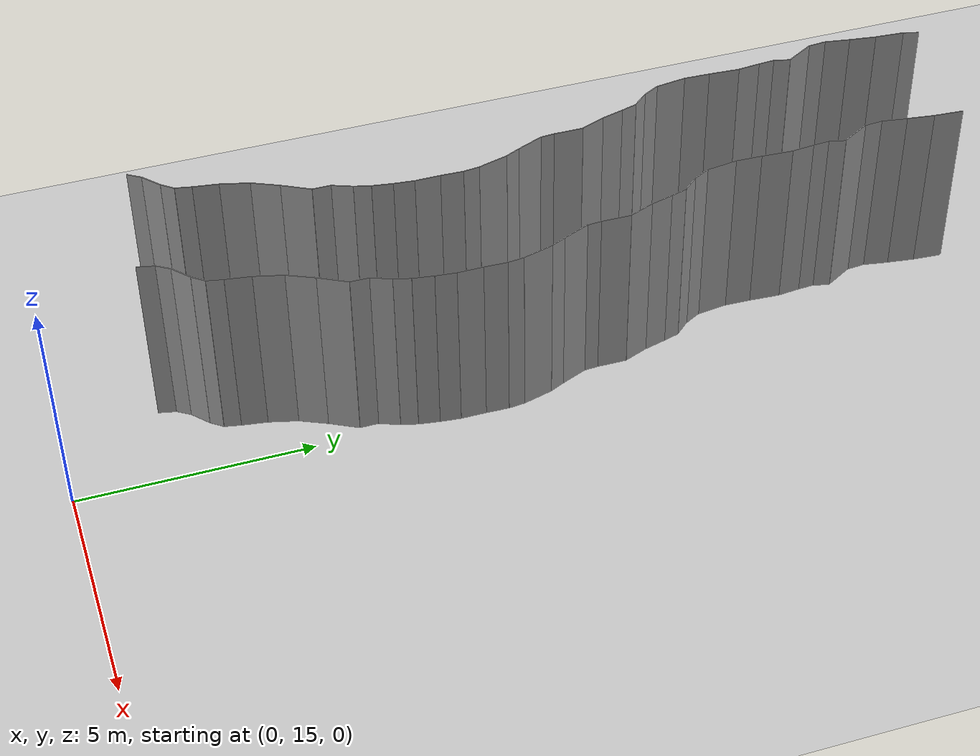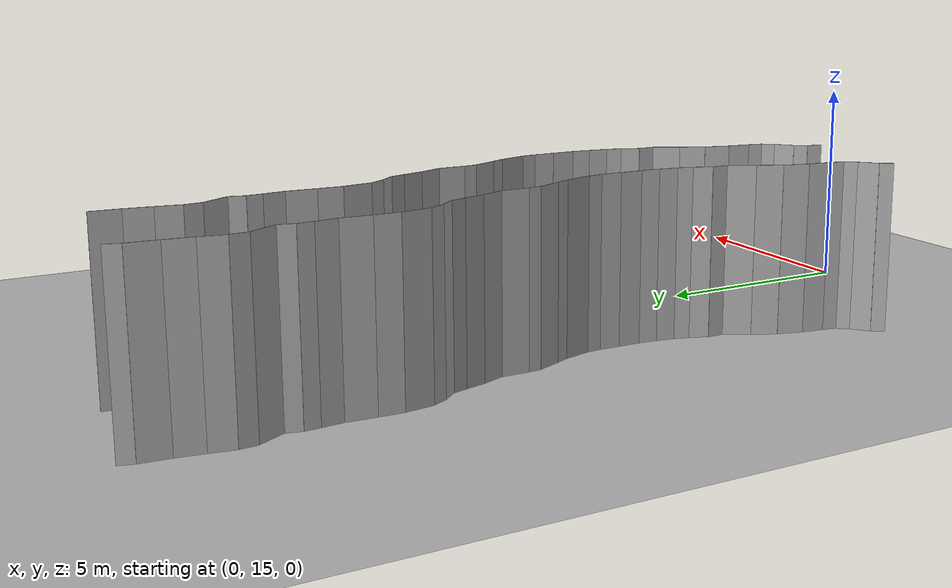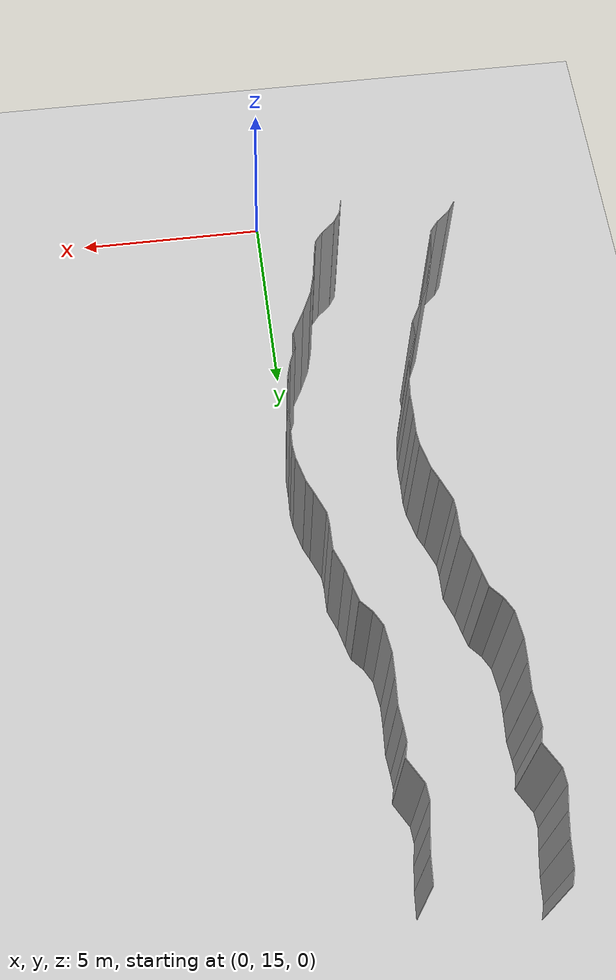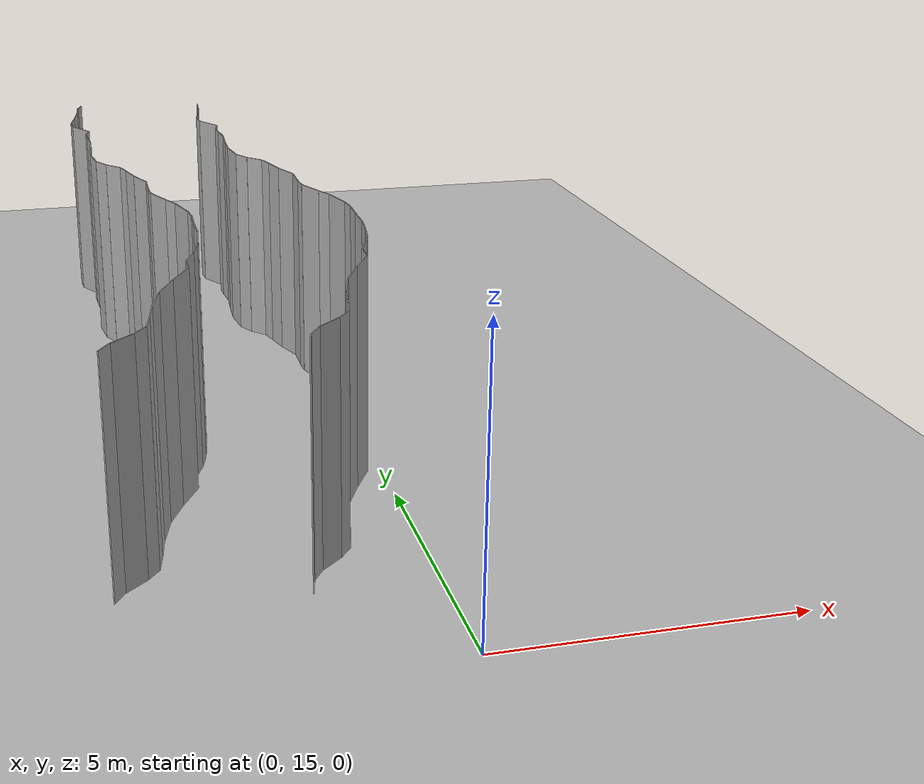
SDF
<sdf version="1.6">
 <world name="default">
  <model name="ground_plane">
   <static>1</static>
   <link name="link">
    <collision name="collision">
     <geometry><plane><normal>0 0 1</normal><size>200 200</size></plane></geometry>
     <surface><friction><ode><mu>100</mu><mu2>50</mu2></ode></friction></surface>
    </collision>
    <visual name="visual">
     <cast_shadows>0</cast_shadows>
     <geometry><plane><normal>0 0 1</normal><size>200 200</size></plane></geometry>
     <material>
      <script><uri>file://media/materials/scripts/gazebo.material</uri><name>Gazebo/Grey</name></script>
     </material>
    </visual>
   </link>
   <pose>0 100 0 0 -0 0</pose>
  </model>
  <model name="wall_73">
   <static>1</static>
   <pose>-1.9405979262429138 17.303504752749035 2 0 0 -0.21745052618434096</pose>
   <link name="link">
    <collision name="collision"><geometry><box><size>0.02 0.380133633448 4</size></box></geometry></collision>
    <visual name="visual">
     <material>
      <script><name>Gazebo/Grey</name><uri>file://media/materials/scripts/gazebo.material</uri></script>
     </material>
     <geometry><box><size>0.02 0.380133633448 4</size></box></geometry>
    </visual>
   </link>
  </model>
  <model name="wall_74">
   <static>1</static>
   <pose>-4.8090508543106 17.62739112944181 2 0 0 -0.5796712429326525</pose>
   <link name="link">
    <collision name="collision"><geometry><box><size>0.02 0.330596319204 4</size></box></geometry></collision>
    <visual name="visual">
     <material>
      <script><name>Gazebo/Grey</name><uri>file://media/materials/scripts/gazebo.material</uri></script>
     </material>
     <geometry><box><size>0.02 0.330596319204 4</size></box></geometry>
    </visual>
   </link>
  </model>
  <model name="wall_75">
   <static>1</static>
   <pose>-1.8090508543106 17.62739112944181 2 0 0 -0.5796712429326525</pose>
   <link name="link">
    <collision name="collision"><geometry><box><size>0.02 0.330596319204 4</size></box></geometry></collision>
    <visual name="visual">
     <material>
      <script><name>Gazebo/Grey</name><uri>file://media/materials/scripts/gazebo.material</uri></script>
     </material>
     <geometry><box><size>0.02 0.330596319204 4</size></box></geometry>
    </visual>
   </link>
  </model>
  <model name="wall_76">
   <static>1</static>
   <pose>-4.537655444849806 17.924619260666404 2 0 0 -0.8498227007358027</pose>
   <link name="link">
    <collision name="collision"><geometry><box><size>0.02 0.48152912436 4</size></box></geometry></collision>
    <visual name="visual">
     <material>
      <script><name>Gazebo/Grey</name><uri>file://media/materials/scripts/gazebo.material</uri></script>
     </material>
     <geometry><box><size>0.02 0.48152912436 4</size></box></geometry>
    </visual>
   </link>
  </model>
  <model name="wall_77">
   <static>1</static>
   <pose>-1.5376554448498059 17.924619260666404 2 0 0 -0.8498227007358027</pose>
   <link name="link">
    <collision name="collision"><geometry><box><size>0.02 0.48152912436 4</size></box></geometry></collision>
    <visual name="visual">
     <material>
      <script><name>Gazebo/Grey</name><uri>file://media/materials/scripts/gazebo.material</uri></script>
     </material>
     <geometry><box><size>0.02 0.48152912436 4</size></box></geometry>
    </visual>
   </link>
  </model>
  <model name="wall_78">
   <static>1</static>
   <pose>-4.259291106532988 18.207845466338775 2 0 0 -0.6652304515447082</pose>
   <link name="link">
    <collision name="collision"><geometry><box><size>0.02 0.315957304203 4</size></box></geometry></collision>
    <visual name="visual">
     <material>
      <script><name>Gazebo/Grey</name><uri>file://media/materials/scripts/gazebo.material</uri></script>
     </material>
     <geometry><box><size>0.02 0.315957304203 4</size></box></geometry>
    </visual>
   </link>
  </model>
  <model name="wall_79">
   <static>1</static>
   <pose>-1.259291106532988 18.207845466338775 2 0 0 -0.6652304515447082</pose>
   <link name="link">
    <collision name="collision"><geometry><box><size>0.02 0.315957304203 4</size></box></geometry></collision>
    <visual name="visual">
     <material>
      <script><name>Gazebo/Grey</name><uri>file://media/materials/scripts/gazebo.material</uri></script>
     </material>
     <geometry><box><size>0.02 0.315957304203 4</size></box></geometry>
    </visual>
   </link>
  </model>
  <model name="wall_80">
   <static>1</static>
   <pose>-4.125946687361028 18.506785651148704 2 0 0 -0.20236920765686695</pose>
   <link name="link">
    <collision name="collision"><geometry><box><size>0.02 0.356569667727 4</size></box></geometry></collision>
    <visual name="visual">
     <material>
      <script><name>Gazebo/Grey</name><uri>file://media/materials/scripts/gazebo.material</uri></script>
     </material>
     <geometry><box><size>0.02 0.356569667727 4</size></box></geometry>
    </visual>
   </link>
  </model>
  <model name="wall_81">
   <static>1</static>
   <pose>-1.1259466873610284 18.506785651148704 2 0 0 -0.20236920765686695</pose>
   <link name="link">
    <collision name="collision"><geometry><box><size>0.02 0.356569667727 4</size></box></geometry></collision>
    <visual name="visual">
     <material>
      <script><name>Gazebo/Grey</name><uri>file://media/materials/scripts/gazebo.material</uri></script>
     </material>
     <geometry><box><size>0.02 0.356569667727 4</size></box></geometry>
    </visual>
   </link>
  </model>
  <model name="wall_82">
   <static>1</static>
   <pose>-4.04897732088072 18.95326960595 2 0 0 -0.15018545184946558</pose>
   <link name="link">
    <collision name="collision"><geometry><box><size>0.02 0.549864341503 4</size></box></geometry></collision>
    <visual name="visual">
     <material>
      <script><name>Gazebo/Grey</name><uri>file://media/materials/scripts/gazebo.material</uri></script>
     </material>
     <geometry><box><size>0.02 0.549864341503 4</size></box></geometry>
    </visual>
   </link>
  </model>
  <model name="wall_83">
   <static>1</static>
   <pose>-1.04897732088072 18.95326960595 2 0 0 -0.15018545184946558</pose>
   <link name="link">
    <collision name="collision"><geometry><box><size>0.02 0.549864341503 4</size></box></geometry></collision>
    <visual name="visual">
     <material>
      <script><name>Gazebo/Grey</name><uri>file://media/materials/scripts/gazebo.material</uri></script>
     </material>
     <geometry><box><size>0.02 0.549864341503 4</size></box></geometry>
    </visual>
   </link>
  </model>
  <model name="wall_84">
   <static>1</static>
   <pose>-3.9269397103972743 19.532441080749784 2 0 0 -0.2573981066082973</pose>
   <link name="link">
    <collision name="collision"><geometry><box><size>0.02 0.63560796138 4</size></box></geometry></collision>
    <visual name="visual">
     <material>
      <script><name>Gazebo/Grey</name><uri>file://media/materials/scripts/gazebo.material</uri></script>
     </material>
     <geometry><box><size>0.02 0.63560796138 4</size></box></geometry>
    </visual>
   </link>
  </model>
  <model name="wall_85">
   <static>1</static>
   <pose>-0.9269397103972743 19.532441080749784 2 0 0 -0.2573981066082973</pose>
   <link name="link">
    <collision name="collision"><geometry><box><size>0.02 0.63560796138 4</size></box></geometry></collision>
    <visual name="visual">
     <material>
      <script><name>Gazebo/Grey</name><uri>file://media/materials/scripts/gazebo.material</uri></script>
     </material>
     <geometry><box><size>0.02 0.63560796138 4</size></box></geometry>
    </visual>
   </link>
  </model>
  <model name="wall_86">
   <static>1</static>
   <pose>-3.7129688123274525 20.12234572424565 2 0 0 -0.44011688636229307</pose>
   <link name="link">
    <collision name="collision"><geometry><box><size>0.02 0.624671027455 4</size></box></geometry></collision>
    <visual name="visual">
     <material>
      <script><name>Gazebo/Grey</name><uri>file://media/materials/scripts/gazebo.material</uri></script>
     </material>
     <geometry><box><size>0.02 0.624671027455 4</size></box></geometry>
    </visual>
   </link>
  </model>
  <model name="wall_87">
   <static>1</static>
   <pose>-0.7129688123274525 20.12234572424565 2 0 0 -0.44011688636229307</pose>
   <link name="link">
    <collision name="collision"><geometry><box><size>0.02 0.624671027455 4</size></box></geometry></collision>
    <visual name="visual">
     <material>
      <script><name>Gazebo/Grey</name><uri>file://media/materials/scripts/gazebo.material</uri></script>
     </material>
     <geometry><box><size>0.02 0.624671027455 4</size></box></geometry>
    </visual>
   </link>
  </model>
  <model name="wall_88">
   <static>1</static>
   <pose>-3.420305541735166 20.697100015111737 2 0 0 -0.49993014691435805</pose>
   <link name="link">
    <collision name="collision"><geometry><box><size>0.02 0.665857849032 4</size></box></geometry></collision>
    <visual name="visual">
     <material>
      <script><name>Gazebo/Grey</name><uri>file://media/materials/scripts/gazebo.material</uri></script>
     </material>
     <geometry><box><size>0.02 0.665857849032 4</size></box></geometry>
    </visual>
   </link>
  </model>
  <model name="wall_89">
   <static>1</static>
   <pose>-0.420305541735166 20.697100015111737 2 0 0 -0.49993014691435805</pose>
   <link name="link">
    <collision name="collision"><geometry><box><size>0.02 0.665857849032 4</size></box></geometry></collision>
    <visual name="visual">
     <material>
      <script><name>Gazebo/Grey</name><uri>file://media/materials/scripts/gazebo.material</uri></script>
     </material>
     <geometry><box><size>0.02 0.665857849032 4</size></box></geometry>
    </visual>
   </link>
  </model>
  <model name="wall_90">
   <static>1</static>
   <pose>-3.260210312977813 21.188671209015144 2 0 0 -0.002512737673673849</pose>
   <link name="link">
    <collision name="collision"><geometry><box><size>0.02 0.398776111981 4</size></box></geometry></collision>
    <visual name="visual">
     <material>
      <script><name>Gazebo/Grey</name><uri>file://media/materials/scripts/gazebo.material</uri></script>
     </material>
     <geometry><box><size>0.02 0.398776111981 4</size></box></geometry>
    </visual>
   </link>
  </model>
  <model name="wall_91">
   <static>1</static>
   <pose>-0.26021031297781283 21.188671209015144 2 0 0 -0.002512737673673849</pose>
   <link name="link">
    <collision name="collision"><geometry><box><size>0.02 0.398776111981 4</size></box></geometry></collision>
    <visual name="visual">
     <material>
      <script><name>Gazebo/Grey</name><uri>file://media/materials/scripts/gazebo.material</uri></script>
     </material>
     <geometry><box><size>0.02 0.398776111981 4</size></box></geometry>
    </visual>
   </link>
  </model>
  <model name="wall_92">
   <static>1</static>
   <pose>-3.1736822961100652 21.59933822921421 2 0 0 -0.38667328824647956</pose>
   <link name="link">
    <collision name="collision"><geometry><box><size>0.02 0.456244288598 4</size></box></geometry></collision>
    <visual name="visual">
     <material>
      <script><name>Gazebo/Grey</name><uri>file://media/materials/scripts/gazebo.material</uri></script>
     </material>
     <geometry><box><size>0.02 0.456244288598 4</size></box></geometry>
    </visual>
   </link>
  </model>
  <model name="wall_93">
   <static>1</static>
   <pose>-0.17368229611006525 21.59933822921421 2 0 0 -0.38667328824647956</pose>
   <link name="link">
    <collision name="collision"><geometry><box><size>0.02 0.456244288598 4</size></box></geometry></collision>
    <visual name="visual">
     <material>
      <script><name>Gazebo/Grey</name><uri>file://media/materials/scripts/gazebo.material</uri></script>
     </material>
     <geometry><box><size>0.02 0.456244288598 4</size></box></geometry>
    </visual>
   </link>
  </model>
  <model name="wall_94">
   <static>1</static>
   <pose>-3.0388098046685807 21.98840284275133 2 0 0 -0.26812880307506903</pose>
   <link name="link">
    <collision name="collision"><geometry><box><size>0.02 0.368745953699 4</size></box></geometry></collision>
    <visual name="visual">
     <material>
      <script><name>Gazebo/Grey</name><uri>file://media/materials/scripts/gazebo.material</uri></script>
     </material>
     <geometry><box><size>0.02 0.368745953699 4</size></box></geometry>
    </visual>
   </link>
  </model>
  <model name="wall_95">
   <static>1</static>
   <pose>-0.03880980466858075 21.98840284275133 2 0 0 -0.26812880307506903</pose>
   <link name="link">
    <collision name="collision"><geometry><box><size>0.02 0.368745953699 4</size></box></geometry></collision>
    <visual name="visual">
     <material>
      <script><name>Gazebo/Grey</name><uri>file://media/materials/scripts/gazebo.material</uri></script>
     </material>
     <geometry><box><size>0.02 0.368745953699 4</size></box></geometry>
    </visual>
   </link>
  </model>
  <model name="wall_96">
   <static>1</static>
   <pose>-2.9558455337147396 22.38895846555877 2 0 0 -0.15197564346339834</pose>
   <link name="link">
    <collision name="collision"><geometry><box><size>0.02 0.450736433667 4</size></box></geometry></collision>
    <visual name="visual">
     <material>
      <script><name>Gazebo/Grey</name><uri>file://media/materials/scripts/gazebo.material</uri></script>
     </material>
     <geometry><box><size>0.02 0.450736433667 4</size></box></geometry>
    </visual>
   </link>
  </model>
  <model name="wall_97">
   <static>1</static>
   <pose>0.04415446628526043 22.38895846555877 2 0 0 -0.15197564346339834</pose>
   <link name="link">
    <collision name="collision"><geometry><box><size>0.02 0.450736433667 4</size></box></geometry></collision>
    <visual name="visual">
     <material>
      <script><name>Gazebo/Grey</name><uri>file://media/materials/scripts/gazebo.material</uri></script>
     </material>
     <geometry><box><size>0.02 0.450736433667 4</size></box></geometry>
    </visual>
   </link>
  </model>
  <model name="wall_98">
   <static>1</static>
   <pose>-2.8978779430872943 22.832247988667863 2 0 0 -0.10772985492441707</pose>
   <link name="link">
    <collision name="collision"><geometry><box><size>0.02 0.443609556206 4</size></box></geometry></collision>
    <visual name="visual">
     <material>
      <script><name>Gazebo/Grey</name><uri>file://media/materials/scripts/gazebo.material</uri></script>
     </material>
     <geometry><box><size>0.02 0.443609556206 4</size></box></geometry>
    </visual>
   </link>
  </model>
  <model name="wall_99">
   <static>1</static>
   <pose>0.1021220569127057 22.832247988667863 2 0 0 -0.10772985492441707</pose>
   <link name="link">
    <collision name="collision"><geometry><box><size>0.02 0.443609556206 4</size></box></geometry></collision>
    <visual name="visual">
     <material>
      <script><name>Gazebo/Grey</name><uri>file://media/materials/scripts/gazebo.material</uri></script>
     </material>
     <geometry><box><size>0.02 0.443609556206 4</size></box></geometry>
    </visual>
   </link>
  </model>
  <model name="wall_100">
   <static>1</static>
   <pose>-2.8746633524548444 23.32493147671447 2 0 0 0.002330251232430163</pose>
   <link name="link">
    <collision name="collision"><geometry><box><size>0.02 0.544330613614 4</size></box></geometry></collision>
    <visual name="visual">
     <material>
      <script><name>Gazebo/Grey</name><uri>file://media/materials/scripts/gazebo.material</uri></script>
     </material>
     <geometry><box><size>0.02 0.544330613614 4</size></box></geometry>
    </visual>
   </link>
  </model>
  <model name="wall_101">
   <static>1</static>
   <pose>0.1253366475451556 23.32493147671447 2 0 0 0.002330251232430163</pose>
   <link name="link">
    <collision name="collision"><geometry><box><size>0.02 0.544330613614 4</size></box></geometry></collision>
    <visual name="visual">
     <material>
      <script><name>Gazebo/Grey</name><uri>file://media/materials/scripts/gazebo.material</uri></script>
     </material>
     <geometry><box><size>0.02 0.544330613614 4</size></box></geometry>
    </visual>
   </link>
  </model>
  <model name="wall_102">
   <static>1</static>
   <pose>-2.867491743651207 23.843409387798804 2 0 0 -0.03168001427152603</pose>
   <link name="link">
    <collision name="collision"><geometry><box><size>0.02 0.49287399566 4</size></box></geometry></collision>
    <visual name="visual">
     <material>
      <script><name>Gazebo/Grey</name><uri>file://media/materials/scripts/gazebo.material</uri></script>
     </material>
     <geometry><box><size>0.02 0.49287399566 4</size></box></geometry>
    </visual>
   </link>
  </model>
  <model name="wall_103">
   <static>1</static>
   <pose>0.13250825634879293 23.843409387798804 2 0 0 -0.03168001427152603</pose>
   <link name="link">
    <collision name="collision"><geometry><box><size>0.02 0.49287399566 4</size></box></geometry></collision>
    <visual name="visual">
     <material>
      <script><name>Gazebo/Grey</name><uri>file://media/materials/scripts/gazebo.material</uri></script>
     </material>
     <geometry><box><size>0.02 0.49287399566 4</size></box></geometry>
    </visual>
   </link>
  </model>
  <model name="wall_104">
   <static>1</static>
   <pose>-2.8774471590715085 24.262781407084322 2 0 0 0.10227321723112542</pose>
   <link name="link">
    <collision name="collision"><geometry><box><size>0.02 0.347935436021 4</size></box></geometry></collision>
    <visual name="visual">
     <material>
      <script><name>Gazebo/Grey</name><uri>file://media/materials/scripts/gazebo.material</uri></script>
     </material>
     <geometry><box><size>0.02 0.347935436021 4</size></box></geometry>
    </visual>
   </link>
  </model>
  <model name="wall_105">
   <static>1</static>
   <pose>0.1225528409284915 24.262781407084322 2 0 0 0.10227321723112542</pose>
   <link name="link">
    <collision name="collision"><geometry><box><size>0.02 0.347935436021 4</size></box></geometry></collision>
    <visual name="visual">
     <material>
      <script><name>Gazebo/Grey</name><uri>file://media/materials/scripts/gazebo.material</uri></script>
     </material>
     <geometry><box><size>0.02 0.347935436021 4</size></box></geometry>
    </visual>
   </link>
  </model>
  <model name="wall_106">
   <static>1</static>
   <pose>-2.982223274780329 24.758961858371904 2 0 0 0.2630540434338525</pose>
   <link name="link">
    <collision name="collision"><geometry><box><size>0.02 0.669266077739 4</size></box></geometry></collision>
    <visual name="visual">
     <material>
      <script><name>Gazebo/Grey</name><uri>file://media/materials/scripts/gazebo.material</uri></script>
     </material>
     <geometry><box><size>0.02 0.669266077739 4</size></box></geometry>
    </visual>
   </link>
  </model>
  <model name="wall_107">
   <static>1</static>
   <pose>0.017776725219670997 24.758961858371904 2 0 0 0.2630540434338525</pose>
   <link name="link">
    <collision name="collision"><geometry><box><size>0.02 0.669266077739 4</size></box></geometry></collision>
    <visual name="visual">
     <material>
      <script><name>Gazebo/Grey</name><uri>file://media/materials/scripts/gazebo.material</uri></script>
     </material>
     <geometry><box><size>0.02 0.669266077739 4</size></box></geometry>
    </visual>
   </link>
  </model>
  <model name="wall_108">
   <static>1</static>
   <pose>-3.142261080793354 25.237744187463523 2 0 0 0.4386369593004954</pose>
   <link name="link">
    <collision name="collision"><geometry><box><size>0.02 0.343875302821 4</size></box></geometry></collision>
    <visual name="visual">
     <material>
      <script><name>Gazebo/Grey</name><uri>file://media/materials/scripts/gazebo.material</uri></script>
     </material>
     <geometry><box><size>0.02 0.343875302821 4</size></box></geometry>
    </visual>
   </link>
  </model>
  <model name="wall_109">
   <static>1</static>
   <pose>-0.1422610807933542 25.237744187463523 2 0 0 0.4386369593004954</pose>
   <link name="link">
    <collision name="collision"><geometry><box><size>0.02 0.343875302821 4</size></box></geometry></collision>
    <visual name="visual">
     <material>
      <script><name>Gazebo/Grey</name><uri>file://media/materials/scripts/gazebo.material</uri></script>
     </material>
     <geometry><box><size>0.02 0.343875302821 4</size></box></geometry>
    </visual>
   </link>
  </model>
  <model name="wall_110">
   <static>1</static>
   <pose>-3.3334440761913187 25.673499980013172 2 0 0 0.3992052793292468</pose>
   <link name="link">
    <collision name="collision"><geometry><box><size>0.02 0.607997185438 4</size></box></geometry></collision>
    <visual name="visual">
     <material>
      <script><name>Gazebo/Grey</name><uri>file://media/materials/scripts/gazebo.material</uri></script>
     </material>
     <geometry><box><size>0.02 0.607997185438 4</size></box></geometry>
    </visual>
   </link>
  </model>
  <model name="wall_111">
   <static>1</static>
   <pose>-0.33344407619131866 25.673499980013172 2 0 0 0.3992052793292468</pose>
   <link name="link">
    <collision name="collision"><geometry><box><size>0.02 0.607997185438 4</size></box></geometry></collision>
    <visual name="visual">
     <material>
      <script><name>Gazebo/Grey</name><uri>file://media/materials/scripts/gazebo.material</uri></script>
     </material>
     <geometry><box><size>0.02 0.607997185438 4</size></box></geometry>
    </visual>
   </link>
  </model>
  <model name="wall_112">
   <static>1</static>
   <pose>-3.462596429926655 26.103327900006146 2 0 0 0.07328127676391422</pose>
   <link name="link">
    <collision name="collision"><geometry><box><size>0.02 0.300271252053 4</size></box></geometry></collision>
    <visual name="visual">
     <material>
      <script><name>Gazebo/Grey</name><uri>file://media/materials/scripts/gazebo.material</uri></script>
     </material>
     <geometry><box><size>0.02 0.300271252053 4</size></box></geometry>
    </visual>
   </link>
  </model>
  <model name="wall_113">
   <static>1</static>
   <pose>-0.4625964299266552 26.103327900006146 2 0 0 0.07328127676391422</pose>
   <link name="link">
    <collision name="collision"><geometry><box><size>0.02 0.300271252053 4</size></box></geometry></collision>
    <visual name="visual">
     <material>
      <script><name>Gazebo/Grey</name><uri>file://media/materials/scripts/gazebo.material</uri></script>
     </material>
     <geometry><box><size>0.02 0.300271252053 4</size></box></geometry>
    </visual>
   </link>
  </model>
  <model name="wall_114">
   <static>1</static>
   <pose>-3.470584370145869 26.57180741230222 2 0 0 -0.00942521260801243</pose>
   <link name="link">
    <collision name="collision"><geometry><box><size>0.02 0.637521978763 4</size></box></geometry></collision>
    <visual name="visual">
     <material>
      <script><name>Gazebo/Grey</name><uri>file://media/materials/scripts/gazebo.material</uri></script>
     </material>
     <geometry><box><size>0.02 0.637521978763 4</size></box></geometry>
    </visual>
   </link>
  </model>
  <model name="wall_115">
   <static>1</static>
   <pose>-0.4705843701458692 26.57180741230222 2 0 0 -0.00942521260801243</pose>
   <link name="link">
    <collision name="collision"><geometry><box><size>0.02 0.637521978763 4</size></box></geometry></collision>
    <visual name="visual">
     <material>
      <script><name>Gazebo/Grey</name><uri>file://media/materials/scripts/gazebo.material</uri></script>
     </material>
     <geometry><box><size>0.02 0.637521978763 4</size></box></geometry>
    </visual>
   </link>
  </model>
  <model name="wall_116">
   <static>1</static>
   <pose>-3.5698808683943604 27.15019600162541 2 0 0 0.3753299240601073</pose>
   <link name="link">
    <collision name="collision"><geometry><box><size>0.02 0.558137278208 4</size></box></geometry></collision>
    <visual name="visual">
     <material>
      <script><name>Gazebo/Grey</name><uri>file://media/materials/scripts/gazebo.material</uri></script>
     </material>
     <geometry><box><size>0.02 0.558137278208 4</size></box></geometry>
    </visual>
   </link>
  </model>
  <model name="wall_117">
   <static>1</static>
   <pose>-0.5698808683943604 27.15019600162541 2 0 0 0.3753299240601073</pose>
   <link name="link">
    <collision name="collision"><geometry><box><size>0.02 0.558137278208 4</size></box></geometry></collision>
    <visual name="visual">
     <material>
      <script><name>Gazebo/Grey</name><uri>file://media/materials/scripts/gazebo.material</uri></script>
     </material>
     <geometry><box><size>0.02 0.558137278208 4</size></box></geometry>
    </visual>
   </link>
  </model>
  <model name="wall_118">
   <static>1</static>
   <pose>-3.735543475753043 27.647565002333305 2 0 0 0.26047605708628974</pose>
   <link name="link">
    <collision name="collision"><geometry><box><size>0.02 0.492052659113 4</size></box></geometry></collision>
    <visual name="visual">
     <material>
      <script><name>Gazebo/Grey</name><uri>file://media/materials/scripts/gazebo.material</uri></script>
     </material>
     <geometry><box><size>0.02 0.492052659113 4</size></box></geometry>
    </visual>
   </link>
  </model>
  <model name="wall_119">
   <static>1</static>
   <pose>-0.735543475753043 27.647565002333305 2 0 0 0.26047605708628974</pose>
   <link name="link">
    <collision name="collision"><geometry><box><size>0.02 0.492052659113 4</size></box></geometry></collision>
    <visual name="visual">
     <material>
      <script><name>Gazebo/Grey</name><uri>file://media/materials/scripts/gazebo.material</uri></script>
     </material>
     <geometry><box><size>0.02 0.492052659113 4</size></box></geometry>
    </visual>
   </link>
  </model>
  <model name="wall_120">
   <static>1</static>
   <pose>-3.8477910476879753 28.05604571693762 2 0 0 0.2788361554356456</pose>
   <link name="link">
    <collision name="collision"><geometry><box><size>0.02 0.355227085392 4</size></box></geometry></collision>
    <visual name="visual">
     <material>
      <script><name>Gazebo/Grey</name><uri>file://media/materials/scripts/gazebo.material</uri></script>
     </material>
     <geometry><box><size>0.02 0.355227085392 4</size></box></geometry>
    </visual>
   </link>
  </model>
  <model name="wall_121">
   <static>1</static>
   <pose>-0.8477910476879753 28.05604571693762 2 0 0 0.2788361554356456</pose>
   <link name="link">
    <collision name="collision"><geometry><box><size>0.02 0.355227085392 4</size></box></geometry></collision>
    <visual name="visual">
     <material>
      <script><name>Gazebo/Grey</name><uri>file://media/materials/scripts/gazebo.material</uri></script>
     </material>
     <geometry><box><size>0.02 0.355227085392 4</size></box></geometry>
    </visual>
   </link>
  </model>
  <model name="wall_122">
   <static>1</static>
   <pose>-4.0341465663588405 28.380787574687954 2 0 0 0.7287827438543323</pose>
   <link name="link">
    <collision name="collision"><geometry><box><size>0.02 0.412845463112 4</size></box></geometry></collision>
    <visual name="visual">
     <material>
      <script><name>Gazebo/Grey</name><uri>file://media/materials/scripts/gazebo.material</uri></script>
     </material>
     <geometry><box><size>0.02 0.412845463112 4</size></box></geometry>
    </visual>
   </link>
  </model>
  <model name="wall_123">
   <static>1</static>
   <pose>-1.0341465663588405 28.380787574687954 2 0 0 0.7287827438543323</pose>
   <link name="link">
    <collision name="collision"><geometry><box><size>0.02 0.412845463112 4</size></box></geometry></collision>
    <visual name="visual">
     <material>
      <script><name>Gazebo/Grey</name><uri>file://media/materials/scripts/gazebo.material</uri></script>
     </material>
     <geometry><box><size>0.02 0.412845463112 4</size></box></geometry>
    </visual>
   </link>
  </model>
  <model name="wall_124">
   <static>1</static>
   <pose>-4.2661328927459445 28.708228568697308 2 0 0 0.49892941237759486</pose>
   <link name="link">
    <collision name="collision"><geometry><box><size>0.02 0.395065554686 4</size></box></geometry></collision>
    <visual name="visual">
     <material>
      <script><name>Gazebo/Grey</name><uri>file://media/materials/scripts/gazebo.material</uri></script>
     </material>
     <geometry><box><size>0.02 0.395065554686 4</size></box></geometry>
    </visual>
   </link>
  </model>
  <model name="wall_125">
   <static>1</static>
   <pose>-1.2661328927459445 28.708228568697308 2 0 0 0.49892941237759486</pose>
   <link name="link">
    <collision name="collision"><geometry><box><size>0.02 0.395065554686 4</size></box></geometry></collision>
    <visual name="visual">
     <material>
      <script><name>Gazebo/Grey</name><uri>file://media/materials/scripts/gazebo.material</uri></script>
     </material>
     <geometry><box><size>0.02 0.395065554686 4</size></box></geometry>
    </visual>
   </link>
  </model>
  <model name="wall_126">
   <static>1</static>
   <pose>-4.406033235374218 29.2137627871852 2 0 0 0.1358229529202847</pose>
   <link name="link">
    <collision name="collision"><geometry><box><size>0.02 0.670336865526 4</size></box></geometry></collision>
    <visual name="visual">
     <material>
      <script><name>Gazebo/Grey</name><uri>file://media/materials/scripts/gazebo.material</uri></script>
     </material>
     <geometry><box><size>0.02 0.670336865526 4</size></box></geometry>
    </visual>
   </link>
  </model>
  <model name="wall_127">
   <static>1</static>
   <pose>-1.4060332353742178 29.2137627871852 2 0 0 0.1358229529202847</pose>
   <link name="link">
    <collision name="collision"><geometry><box><size>0.02 0.670336865526 4</size></box></geometry></collision>
    <visual name="visual">
     <material>
      <script><name>Gazebo/Grey</name><uri>file://media/materials/scripts/gazebo.material</uri></script>
     </material>
     <geometry><box><size>0.02 0.670336865526 4</size></box></geometry>
    </visual>
   </link>
  </model>
  <model name="wall_128">
   <static>1</static>
   <pose>-4.442783425128623 29.827902618154553 2 0 0 -0.03059950498302147</pose>
   <link name="link">
    <collision name="collision"><geometry><box><size>0.02 0.564380644528 4</size></box></geometry></collision>
    <visual name="visual">
     <material>
      <script><name>Gazebo/Grey</name><uri>file://media/materials/scripts/gazebo.material</uri></script>
     </material>
     <geometry><box><size>0.02 0.564380644528 4</size></box></geometry>
    </visual>
   </link>
  </model>
  <model name="wall_129">
   <static>1</static>
   <pose>-1.4427834251286233 29.827902618154553 2 0 0 -0.03059950498302147</pose>
   <link name="link">
    <collision name="collision"><geometry><box><size>0.02 0.564380644528 4</size></box></geometry></collision>
    <visual name="visual">
     <material>
      <script><name>Gazebo/Grey</name><uri>file://media/materials/scripts/gazebo.material</uri></script>
     </material>
     <geometry><box><size>0.02 0.564380644528 4</size></box></geometry>
    </visual>
   </link>
  </model>
  <model name="wall_130">
   <static>1</static>
   <pose>-4.413630511386044 30.448330453876512 2 0 0 -0.06056772995165061</pose>
   <link name="link">
    <collision name="collision"><geometry><box><size>0.02 0.677982421639 4</size></box></geometry></collision>
    <visual name="visual">
     <material>
      <script><name>Gazebo/Grey</name><uri>file://media/materials/scripts/gazebo.material</uri></script>
     </material>
     <geometry><box><size>0.02 0.677982421639 4</size></box></geometry>
    </visual>
   </link>
  </model>
  <model name="wall_131">
   <static>1</static>
   <pose>-1.4136305113860441 30.448330453876512 2 0 0 -0.06056772995165061</pose>
   <link name="link">
    <collision name="collision"><geometry><box><size>0.02 0.677982421639 4</size></box></geometry></collision>
    <visual name="visual">
     <material>
      <script><name>Gazebo/Grey</name><uri>file://media/materials/scripts/gazebo.material</uri></script>
     </material>
     <geometry><box><size>0.02 0.677982421639 4</size></box></geometry>
    </visual>
   </link>
  </model>
  <model name="wall_132">
   <static>1</static>
   <pose>-4.417452268027261 31.03049929908118 2 0 0 0.09951112150589234</pose>
   <link name="link">
    <collision name="collision"><geometry><box><size>0.02 0.490022675243 4</size></box></geometry></collision>
    <visual name="visual">
     <material>
      <script><name>Gazebo/Grey</name><uri>file://media/materials/scripts/gazebo.material</uri></script>
     </material>
     <geometry><box><size>0.02 0.490022675243 4</size></box></geometry>
    </visual>
   </link>
  </model>
  <model name="wall_133">
   <static>1</static>
   <pose>-1.4174522680272608 31.03049929908118 2 0 0 0.09951112150589234</pose>
   <link name="link">
    <collision name="collision"><geometry><box><size>0.02 0.490022675243 4</size></box></geometry></collision>
    <visual name="visual">
     <material>
      <script><name>Gazebo/Grey</name><uri>file://media/materials/scripts/gazebo.material</uri></script>
     </material>
     <geometry><box><size>0.02 0.490022675243 4</size></box></geometry>
    </visual>
   </link>
  </model>
  <model name="wall_134">
   <static>1</static>
   <pose>-4.452397759446966 31.450199342860486 2 0 0 0.06021313183023827</pose>
   <link name="link">
    <collision name="collision"><geometry><box><size>0.02 0.352440341211 4</size></box></geometry></collision>
    <visual name="visual">
     <material>
      <script><name>Gazebo/Grey</name><uri>file://media/materials/scripts/gazebo.material</uri></script>
     </material>
     <geometry><box><size>0.02 0.352440341211 4</size></box></geometry>
    </visual>
   </link>
  </model>
  <model name="wall_135">
   <static>1</static>
   <pose>-1.4523977594469661 31.450199342860486 2 0 0 0.06021313183023827</pose>
   <link name="link">
    <collision name="collision"><geometry><box><size>0.02 0.352440341211 4</size></box></geometry></collision>
    <visual name="visual">
     <material>
      <script><name>Gazebo/Grey</name><uri>file://media/materials/scripts/gazebo.material</uri></script>
     </material>
     <geometry><box><size>0.02 0.352440341211 4</size></box></geometry>
    </visual>
   </link>
  </model>
  <model name="wall_136">
   <static>1</static>
   <pose>-4.420408804714107 31.802904095510023 2 0 0 -0.2364024375527528</pose>
   <link name="link">
    <collision name="collision"><geometry><box><size>0.02 0.363724198991 4</size></box></geometry></collision>
    <visual name="visual">
     <material>
      <script><name>Gazebo/Grey</name><uri>file://media/materials/scripts/gazebo.material</uri></script>
     </material>
     <geometry><box><size>0.02 0.363724198991 4</size></box></geometry>
    </visual>
   </link>
  </model>
  <model name="wall_137">
   <static>1</static>
   <pose>-1.420408804714107 31.802904095510023 2 0 0 -0.2364024375527528</pose>
   <link name="link">
    <collision name="collision"><geometry><box><size>0.02 0.363724198991 4</size></box></geometry></collision>
    <visual name="visual">
     <material>
      <script><name>Gazebo/Grey</name><uri>file://media/materials/scripts/gazebo.material</uri></script>
     </material>
     <geometry><box><size>0.02 0.363724198991 4</size></box></geometry>
    </visual>
   </link>
  </model>
  <model name="wall_138">
   <static>1</static>
   <pose>-4.549807812755879 32.27759709525107 2 0 0 0.523613859895887</pose>
   <link name="link">
    <collision name="collision"><geometry><box><size>0.02 0.687951308251 4</size></box></geometry></collision>
    <visual name="visual">
     <material>
      <script><name>Gazebo/Grey</name><uri>file://media/materials/scripts/gazebo.material</uri></script>
     </material>
     <geometry><box><size>0.02 0.687951308251 4</size></box></geometry>
    </visual>
   </link>
  </model>
  <model name="wall_139">
   <static>1</static>
   <pose>-1.549807812755879 32.27759709525107 2 0 0 0.523613859895887</pose>
   <link name="link">
    <collision name="collision"><geometry><box><size>0.02 0.687951308251 4</size></box></geometry></collision>
    <visual name="visual">
     <material>
      <script><name>Gazebo/Grey</name><uri>file://media/materials/scripts/gazebo.material</uri></script>
     </material>
     <geometry><box><size>0.02 0.687951308251 4</size></box></geometry>
    </visual>
   </link>
  </model>
  <model name="wall_140">
   <static>1</static>
   <pose>-4.7385519818969115 32.77202981258373 2 0 0 0.08502670608644575</pose>
   <link name="link">
    <collision name="collision"><geometry><box><size>0.02 0.394512527101 4</size></box></geometry></collision>
    <visual name="visual">
     <material>
      <script><name>Gazebo/Grey</name><uri>file://media/materials/scripts/gazebo.material</uri></script>
     </material>
     <geometry><box><size>0.02 0.394512527101 4</size></box></geometry>
    </visual>
   </link>
  </model>
  <model name="wall_141">
   <static>1</static>
   <pose>-1.7385519818969115 32.77202981258373 2 0 0 0.08502670608644575</pose>
   <link name="link">
    <collision name="collision"><geometry><box><size>0.02 0.394512527101 4</size></box></geometry></collision>
    <visual name="visual">
     <material>
      <script><name>Gazebo/Grey</name><uri>file://media/materials/scripts/gazebo.material</uri></script>
     </material>
     <geometry><box><size>0.02 0.394512527101 4</size></box></geometry>
    </visual>
   </link>
  </model>
  <model name="wall_142">
   <static>1</static>
   <pose>-4.709135393654167 33.24128518625957 2 0 0 -0.16770383435737424</pose>
   <link name="link">
    <collision name="collision"><geometry><box><size>0.02 0.553184255069 4</size></box></geometry></collision>
    <visual name="visual">
     <material>
      <script><name>Gazebo/Grey</name><uri>file://media/materials/scripts/gazebo.material</uri></script>
     </material>
     <geometry><box><size>0.02 0.553184255069 4</size></box></geometry>
    </visual>
   </link>
  </model>
  <model name="wall_143">
   <static>1</static>
   <pose>-1.709135393654167 33.24128518625957 2 0 0 -0.16770383435737424</pose>
   <link name="link">
    <collision name="collision"><geometry><box><size>0.02 0.553184255069 4</size></box></geometry></collision>
    <visual name="visual">
     <material>
      <script><name>Gazebo/Grey</name><uri>file://media/materials/scripts/gazebo.material</uri></script>
     </material>
     <geometry><box><size>0.02 0.553184255069 4</size></box></geometry>
    </visual>
   </link>
  </model>
  <model name="wall_144">
   <static>1</static>
   <pose>-4.62195610250301 33.8095677220869 2 0 0 -0.1378710988783205</pose>
   <link name="link">
    <collision name="collision"><geometry><box><size>0.02 0.596804823239 4</size></box></geometry></collision>
    <visual name="visual">
     <material>
      <script><name>Gazebo/Grey</name><uri>file://media/materials/scripts/gazebo.material</uri></script>
     </material>
     <geometry><box><size>0.02 0.596804823239 4</size></box></geometry>
    </visual>
   </link>
  </model>
  <model name="wall_145">
   <static>1</static>
   <pose>-1.6219561025030096 33.8095677220869 2 0 0 -0.1378710988783205</pose>
   <link name="link">
    <collision name="collision"><geometry><box><size>0.02 0.596804823239 4</size></box></geometry></collision>
    <visual name="visual">
     <material>
      <script><name>Gazebo/Grey</name><uri>file://media/materials/scripts/gazebo.material</uri></script>
     </material>
     <geometry><box><size>0.02 0.596804823239 4</size></box></geometry>
    </visual>
   </link>
  </model>
  <model name="wall_146">
   <static>1</static>
   <pose>-4.5583322153672245 34.42650926945965 2 0 0 -0.07024853618579469</pose>
   <link name="link">
    <collision name="collision"><geometry><box><size>0.02 0.644330642633 4</size></box></geometry></collision>
    <visual name="visual">
     <material>
      <script><name>Gazebo/Grey</name><uri>file://media/materials/scripts/gazebo.material</uri></script>
     </material>
     <geometry><box><size>0.02 0.644330642633 4</size></box></geometry>
    </visual>
   </link>
  </model>
  <model name="wall_147">
   <static>1</static>
   <pose>-1.5583322153672245 34.42650926945965 2 0 0 -0.07024853618579469</pose>
   <link name="link">
    <collision name="collision"><geometry><box><size>0.02 0.644330642633 4</size></box></geometry></collision>
    <visual name="visual">
     <material>
      <script><name>Gazebo/Grey</name><uri>file://media/materials/scripts/gazebo.material</uri></script>
     </material>
     <geometry><box><size>0.02 0.644330642633 4</size></box></geometry>
    </visual>
   </link>
  </model>
  <model name="wall_148">
   <static>1</static>
   <pose>-4.487543233944392 34.91481203085667 2 0 0 -0.2809620271610667</pose>
   <link name="link">
    <collision name="collision"><geometry><box><size>0.02 0.347489428314 4</size></box></geometry></collision>
    <visual name="visual">
     <material>
      <script><name>Gazebo/Grey</name><uri>file://media/materials/scripts/gazebo.material</uri></script>
     </material>
     <geometry><box><size>0.02 0.347489428314 4</size></box></geometry>
    </visual>
   </link>
  </model>
 </world>
</sdf>
